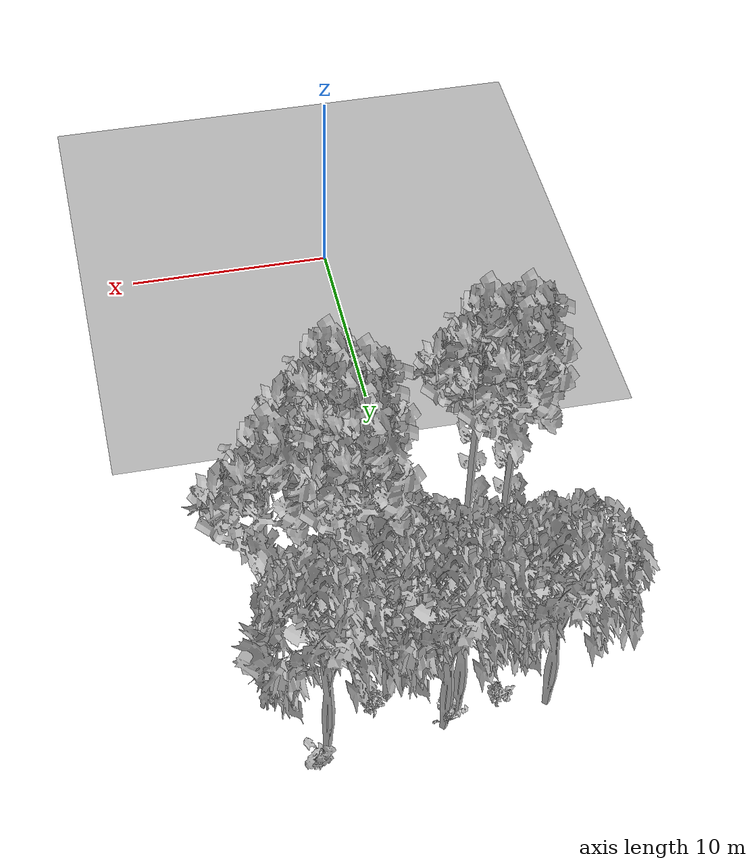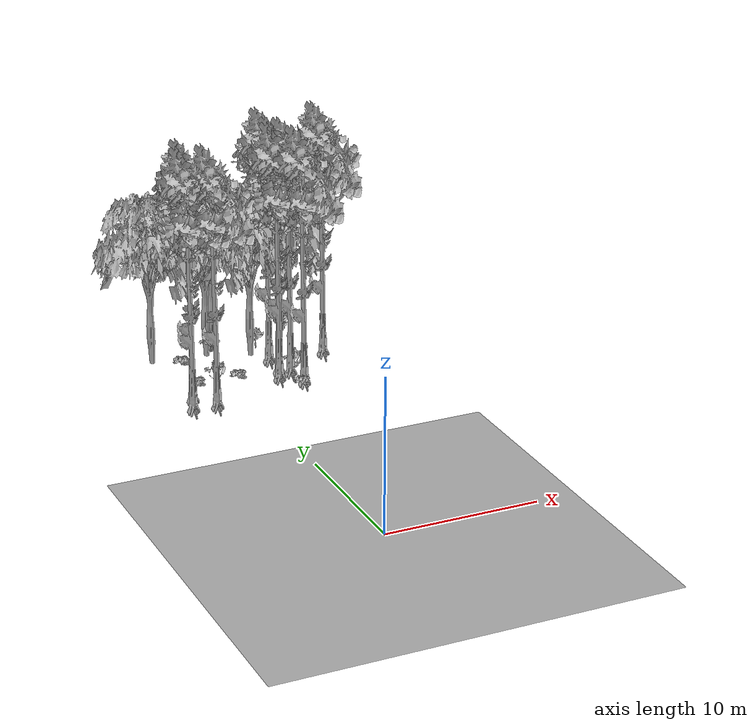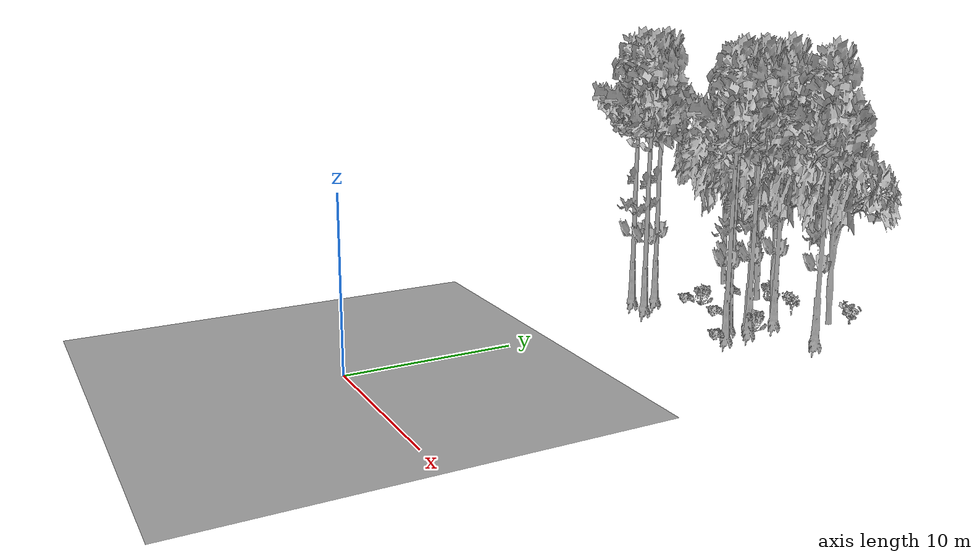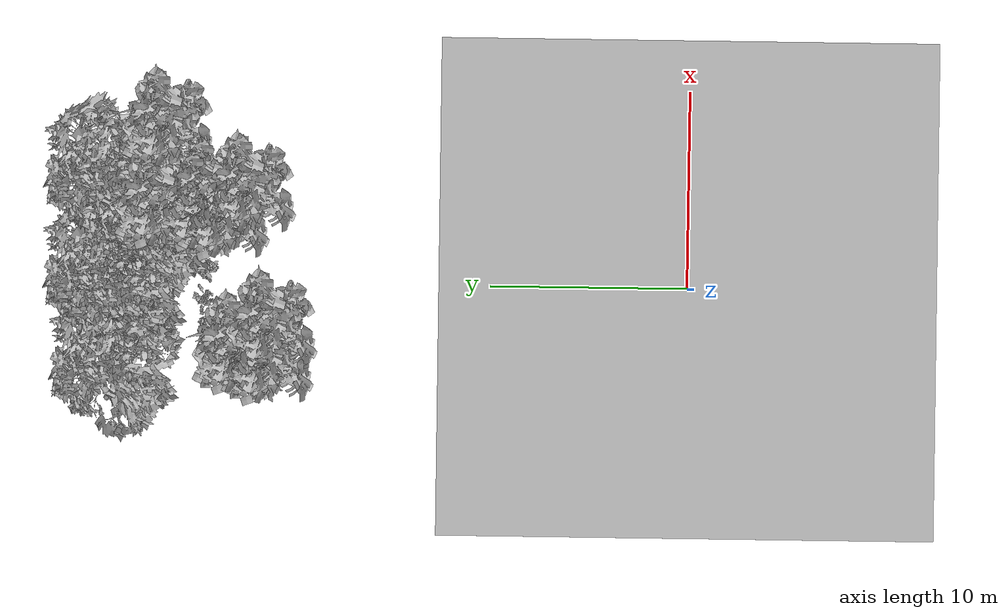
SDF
<sdf version="1.7">
 <world name="default">
  <model name="ground_plane">
   <static>1</static>
   <link name="link">
    <collision name="collision">
     <pose>-50 0 0 0 -0 0</pose>
     <geometry><plane><normal>0 0 1</normal><size>80 80</size></plane></geometry>
     <surface><contact><ode><min_depth>0.01</min_depth><max_vel>0</max_vel></ode></contact></surface>
    </collision>
    <visual name="grass">
     <cast_shadows>0</cast_shadows>
     <geometry>
      <mesh>
       <scale>0.46714285714285714 0.46714285714285714 0.1</scale>
       <uri>file://grass_plane/meshes/grass_plane.dae</uri>
      </mesh>
     </geometry>
    </visual>
   </link>
  </model>
  <model name="Tree 53">
   <static>1</static>
   <pose>4.311095297616639 23.943461254721335 0 1.57079 -0 0</pose>
   <link name="link">
    <collision name="collision">
     <geometry><mesh><scale>3.5 5 3.5</scale><uri>model://tree_9/meshes/tree_9.obj</uri></mesh></geometry>
    </collision>
    <visual name="visual">
     <geometry><mesh><scale>3.5 5 3.5</scale><uri>model://tree_9/meshes/tree_9.obj</uri></mesh></geometry>
    </visual>
   </link>
  </model>
  <model name="Tree 100">
   <static>1</static>
   <pose>2.6614813515616618 27.153700110124277 0 1.57079 -0 0</pose>
   <link name="link">
    <collision name="collision">
     <geometry><mesh><scale>3.5 5 3.5</scale><uri>model://tree_2/meshes/tree_2.obj</uri></mesh></geometry>
    </collision>
    <visual name="visual">
     <geometry><mesh><scale>3.5 5 3.5</scale><uri>model://tree_2/meshes/tree_2.obj</uri></mesh></geometry>
    </visual>
   </link>
  </model>
  <model name="Tree 105">
   <static>1</static>
   <pose>-3.7417027605186988 21.102606266353582 0 1.57079 -0 0</pose>
   <link name="link">
    <collision name="collision">
     <geometry><mesh><scale>3.5 5 3.5</scale><uri>model://tree_9/meshes/tree_9.obj</uri></mesh></geometry>
    </collision>
    <visual name="visual">
     <geometry><mesh><scale>3.5 5 3.5</scale><uri>model://tree_9/meshes/tree_9.obj</uri></mesh></geometry>
    </visual>
   </link>
  </model>
  <model name="Tree 180">
   <static>1</static>
   <pose>5.5645901105967255 28.987954124607555 0 1.57079 -0 0</pose>
   <link name="link">
    <collision name="collision">
     <geometry><mesh><scale>3.5 5 3.5</scale><uri>model://tree_2/meshes/tree_2.obj</uri></mesh></geometry>
    </collision>
    <visual name="visual">
     <geometry><mesh><scale>3.5 5 3.5</scale><uri>model://tree_2/meshes/tree_2.obj</uri></mesh></geometry>
    </visual>
   </link>
  </model>
  <model name="Tree 191">
   <static>1</static>
   <pose>0.6205311063654548 28.97806384700823 0 1.57079 -0 0</pose>
   <link name="link">
    <collision name="collision">
     <geometry><mesh><scale>3.5 5 3.5</scale><uri>model://tree_2/meshes/tree_2.obj</uri></mesh></geometry>
    </collision>
    <visual name="visual">
     <geometry><mesh><scale>3.5 5 3.5</scale><uri>model://tree_2/meshes/tree_2.obj</uri></mesh></geometry>
    </visual>
   </link>
  </model>
  <model name="Tree 242">
   <static>1</static>
   <pose>4.502297948111163 22.06386880664641 0 1.57079 -0 0</pose>
   <link name="link">
    <collision name="collision">
     <geometry><mesh><scale>3.5 5 3.5</scale><uri>model://tree_9/meshes/tree_9.obj</uri></mesh></geometry>
    </collision>
    <visual name="visual">
     <geometry><mesh><scale>3.5 5 3.5</scale><uri>model://tree_9/meshes/tree_9.obj</uri></mesh></geometry>
    </visual>
   </link>
  </model>
  <model name="Tree 259">
   <static>1</static>
   <pose>-3.2363223866118958 22.529016172978515 0 1.57079 -0 0</pose>
   <link name="link">
    <collision name="collision">
     <geometry><mesh><scale>3.5 5 3.5</scale><uri>model://tree_9/meshes/tree_9.obj</uri></mesh></geometry>
    </collision>
    <visual name="visual">
     <geometry><mesh><scale>3.5 5 3.5</scale><uri>model://tree_9/meshes/tree_9.obj</uri></mesh></geometry>
    </visual>
   </link>
  </model>
  <model name="Tree 304">
   <static>1</static>
   <pose>7.617714409936575 26.066917266447533 0 1.57079 -0 0</pose>
   <link name="link">
    <collision name="collision">
     <geometry><mesh><scale>3.5 5 3.5</scale><uri>model://tree_9/meshes/tree_9.obj</uri></mesh></geometry>
    </collision>
    <visual name="visual">
     <geometry><mesh><scale>3.5 5 3.5</scale><uri>model://tree_9/meshes/tree_9.obj</uri></mesh></geometry>
    </visual>
   </link>
  </model>
  <model name="Tree 308">
   <static>1</static>
   <pose>3.6581620335264873 24.392064168434175 0 1.57079 -0 0</pose>
   <link name="link">
    <collision name="collision">
     <geometry><mesh><scale>3.5 5 3.5</scale><uri>model://tree_9/meshes/tree_9.obj</uri></mesh></geometry>
    </collision>
    <visual name="visual">
     <geometry><mesh><scale>3.5 5 3.5</scale><uri>model://tree_9/meshes/tree_9.obj</uri></mesh></geometry>
    </visual>
   </link>
  </model>
  <model name="Tree 374">
   <static>1</static>
   <pose>-0.11164695082365483 28.27435585252728 0 1.57079 -0 0</pose>
   <link name="link">
    <collision name="collision">
     <geometry><mesh><scale>3.5 5 3.5</scale><uri>model://tree_2/meshes/tree_2.obj</uri></mesh></geometry>
    </collision>
    <visual name="visual">
     <geometry><mesh><scale>3.5 5 3.5</scale><uri>model://tree_2/meshes/tree_2.obj</uri></mesh></geometry>
    </visual>
   </link>
  </model>
  <model name="Tree 422">
   <static>1</static>
   <pose>-2.137895270494866 20.933145685967176 0 1.57079 -0 0</pose>
   <link name="link">
    <collision name="collision">
     <geometry><mesh><scale>3.5 5 3.5</scale><uri>model://tree_9/meshes/tree_9.obj</uri></mesh></geometry>
    </collision>
    <visual name="visual">
     <geometry><mesh><scale>3.5 5 3.5</scale><uri>model://tree_9/meshes/tree_9.obj</uri></mesh></geometry>
    </visual>
   </link>
  </model>
  <model name="Tree 507">
   <static>1</static>
   <pose>3.2535692003883483 23.327176250037823 0 1.57079 -0 0</pose>
   <link name="link">
    <collision name="collision">
     <geometry><mesh><scale>3.5 5 3.5</scale><uri>model://tree_9/meshes/tree_9.obj</uri></mesh></geometry>
    </collision>
    <visual name="visual">
     <geometry><mesh><scale>3.5 5 3.5</scale><uri>model://tree_9/meshes/tree_9.obj</uri></mesh></geometry>
    </visual>
   </link>
  </model>
  <model name="Tree 515">
   <static>1</static>
   <pose>-3.8894893182775405 28.628689973472888 0 1.57079 -0 0</pose>
   <link name="link">
    <collision name="collision">
     <geometry><mesh><scale>3.5 5 3.5</scale><uri>model://tree_2/meshes/tree_2.obj</uri></mesh></geometry>
    </collision>
    <visual name="visual">
     <geometry><mesh><scale>3.5 5 3.5</scale><uri>model://tree_2/meshes/tree_2.obj</uri></mesh></geometry>
    </visual>
   </link>
  </model>
  <model name="Tree 522">
   <static>1</static>
   <pose>3.7703125407463602 26.36816642163096 0 1.57079 -0 0</pose>
   <link name="link">
    <collision name="collision">
     <geometry><mesh><scale>3.5 5 3.5</scale><uri>model://tree_9/meshes/tree_9.obj</uri></mesh></geometry>
    </collision>
    <visual name="visual">
     <geometry><mesh><scale>3.5 5 3.5</scale><uri>model://tree_9/meshes/tree_9.obj</uri></mesh></geometry>
    </visual>
   </link>
  </model>
  <model name="Bush 46">
   <static>1</static>
   <pose>4.152688947138216 21.623832604450016 0 1.57079 -0 0</pose>
   <link name="link">
    <collision name="collision">
     <geometry><mesh><scale>2 2 2</scale><uri>model://bush_2/meshes/bush_2.obj</uri></mesh></geometry>
     <surface><contact><collide_without_contact>false</collide_without_contact></contact></surface>
    </collision>
    <visual name="visual">
     <geometry><mesh><scale>2 2 2</scale><uri>model://bush_2/meshes/bush_2.obj</uri></mesh></geometry>
    </visual>
   </link>
  </model>
  <model name="Bush 112">
   <static>1</static>
   <pose>6.358594469793232 30.051981570903934 0 1.57079 -0 0</pose>
   <link name="link">
    <collision name="collision">
     <geometry><mesh><scale>2 2 2</scale><uri>model://bush_0/meshes/bush_0.obj</uri></mesh></geometry>
     <surface><contact><collide_without_contact>false</collide_without_contact></contact></surface>
    </collision>
    <visual name="visual">
     <geometry><mesh><scale>2 2 2</scale><uri>model://bush_0/meshes/bush_0.obj</uri></mesh></geometry>
    </visual>
   </link>
  </model>
  <model name="Bush 196">
   <static>1</static>
   <pose>0.6745717962687294 24.280353552535928 0 1.57079 -0 0</pose>
   <link name="link">
    <collision name="collision">
     <geometry><mesh><scale>2 2 2</scale><uri>model://bush_2/meshes/bush_2.obj</uri></mesh></geometry>
     <surface><contact><collide_without_contact>false</collide_without_contact></contact></surface>
    </collision>
    <visual name="visual">
     <geometry><mesh><scale>2 2 2</scale><uri>model://bush_2/meshes/bush_2.obj</uri></mesh></geometry>
    </visual>
   </link>
  </model>
  <model name="Bush 235">
   <static>1</static>
   <pose>-2.0064867385622946 27.906756730193536 0 1.57079 -0 0</pose>
   <link name="link">
    <collision name="collision">
     <geometry><mesh><scale>2 2 2</scale><uri>model://bush_2/meshes/bush_2.obj</uri></mesh></geometry>
     <surface><contact><collide_without_contact>false</collide_without_contact></contact></surface>
    </collision>
    <visual name="visual">
     <geometry><mesh><scale>2 2 2</scale><uri>model://bush_2/meshes/bush_2.obj</uri></mesh></geometry>
    </visual>
   </link>
  </model>
  <model name="Bush 321">
   <static>1</static>
   <pose>0.47064224924012876 28.76932720222395 0 1.57079 -0 0</pose>
   <link name="link">
    <collision name="collision">
     <geometry><mesh><scale>2 2 2</scale><uri>model://bush_4/meshes/bush_4.obj</uri></mesh></geometry>
     <surface><contact><collide_without_contact>false</collide_without_contact></contact></surface>
    </collision>
    <visual name="visual">
     <geometry><mesh><scale>2 2 2</scale><uri>model://bush_4/meshes/bush_4.obj</uri></mesh></geometry>
    </visual>
   </link>
  </model>
  <model name="Bush 332">
   <static>1</static>
   <pose>4.6431116613211 24.00439003175225 0 1.57079 -0 0</pose>
   <link name="link">
    <collision name="collision">
     <geometry><mesh><scale>2 2 2</scale><uri>model://bush_4/meshes/bush_4.obj</uri></mesh></geometry>
     <surface><contact><collide_without_contact>false</collide_without_contact></contact></surface>
    </collision>
    <visual name="visual">
     <geometry><mesh><scale>2 2 2</scale><uri>model://bush_4/meshes/bush_4.obj</uri></mesh></geometry>
    </visual>
   </link>
  </model>
  <model name="Bush 429">
   <static>1</static>
   <pose>3.495385065341381 28.057495038169705 0 1.57079 -0 0</pose>
   <link name="link">
    <collision name="collision">
     <geometry><mesh><scale>2 2 2</scale><uri>model://bush_5/meshes/bush_5.obj</uri></mesh></geometry>
     <surface><contact><collide_without_contact>false</collide_without_contact></contact></surface>
    </collision>
    <visual name="visual">
     <geometry><mesh><scale>2 2 2</scale><uri>model://bush_5/meshes/bush_5.obj</uri></mesh></geometry>
    </visual>
   </link>
  </model>
  <model name="Bush 505">
   <static>1</static>
   <pose>-0.8339984853599205 24.3915041248668 0 1.57079 -0 0</pose>
   <link name="link">
    <collision name="collision">
     <geometry><mesh><scale>2 2 2</scale><uri>model://bush_4/meshes/bush_4.obj</uri></mesh></geometry>
     <surface><contact><collide_without_contact>false</collide_without_contact></contact></surface>
    </collision>
    <visual name="visual">
     <geometry><mesh><scale>2 2 2</scale><uri>model://bush_4/meshes/bush_4.obj</uri></mesh></geometry>
    </visual>
   </link>
  </model>
  <model name="Bush 573">
   <static>1</static>
   <pose>-2.2495321870749407 24.295824587252667 0 1.57079 -0 0</pose>
   <link name="link">
    <collision name="collision">
     <geometry><mesh><scale>2 2 2</scale><uri>model://bush_2/meshes/bush_2.obj</uri></mesh></geometry>
     <surface><contact><collide_without_contact>false</collide_without_contact></contact></surface>
    </collision>
    <visual name="visual">
     <geometry><mesh><scale>2 2 2</scale><uri>model://bush_2/meshes/bush_2.obj</uri></mesh></geometry>
    </visual>
   </link>
  </model>
 </world>
</sdf>
